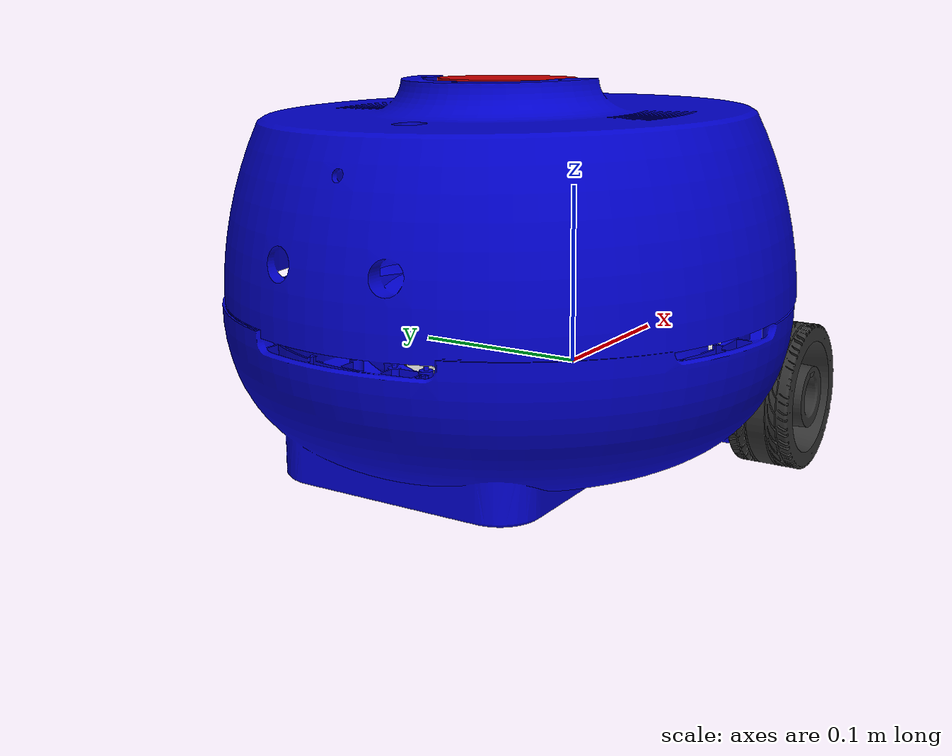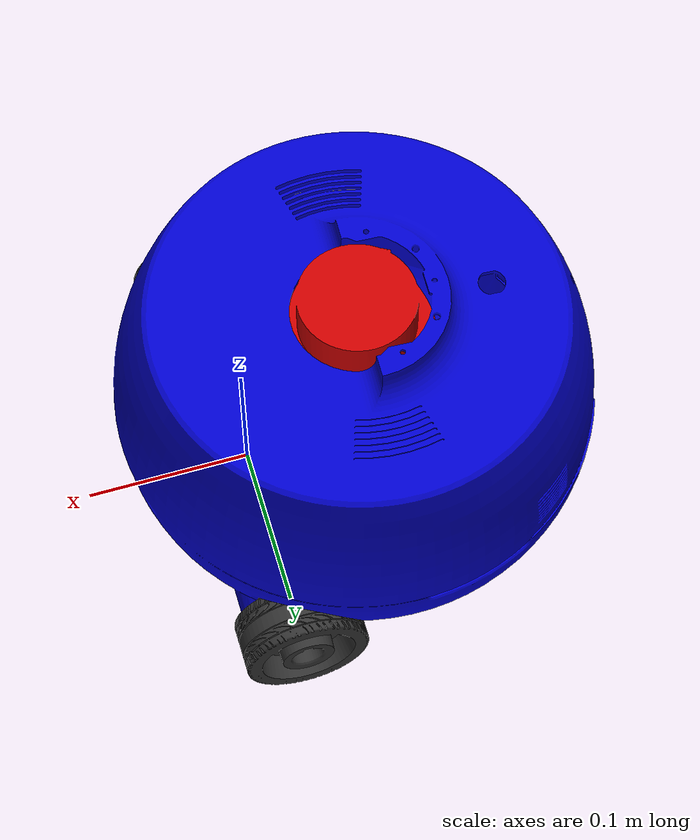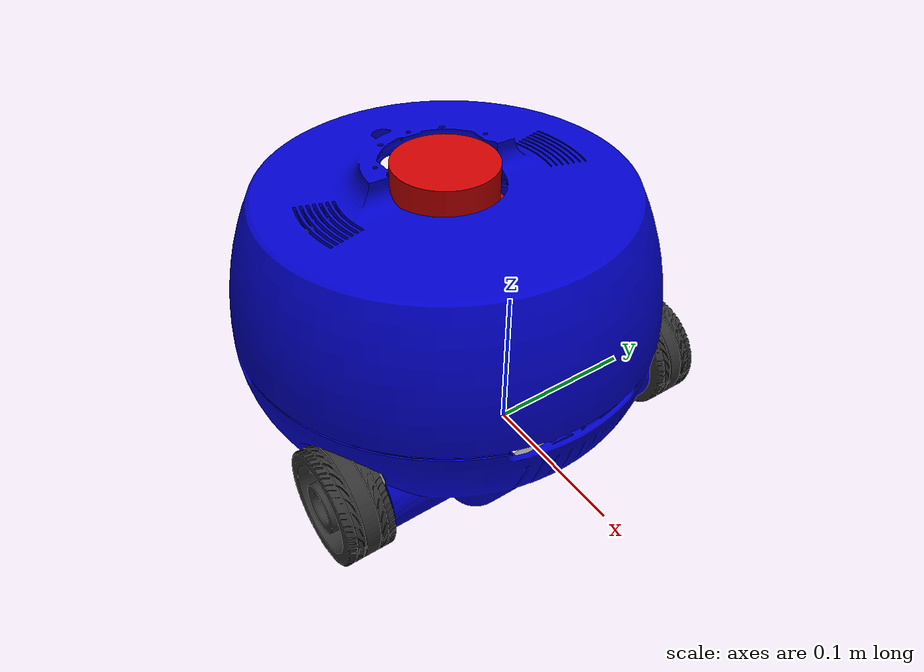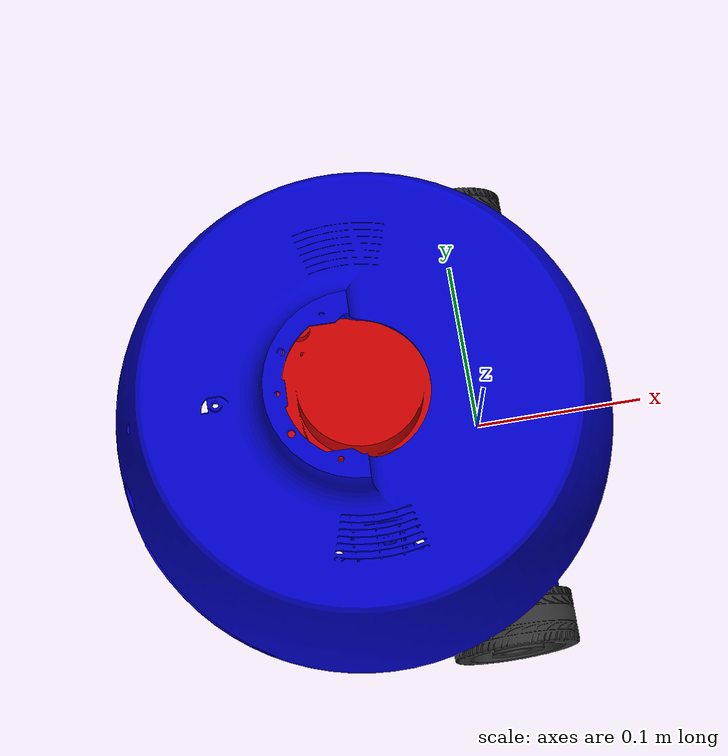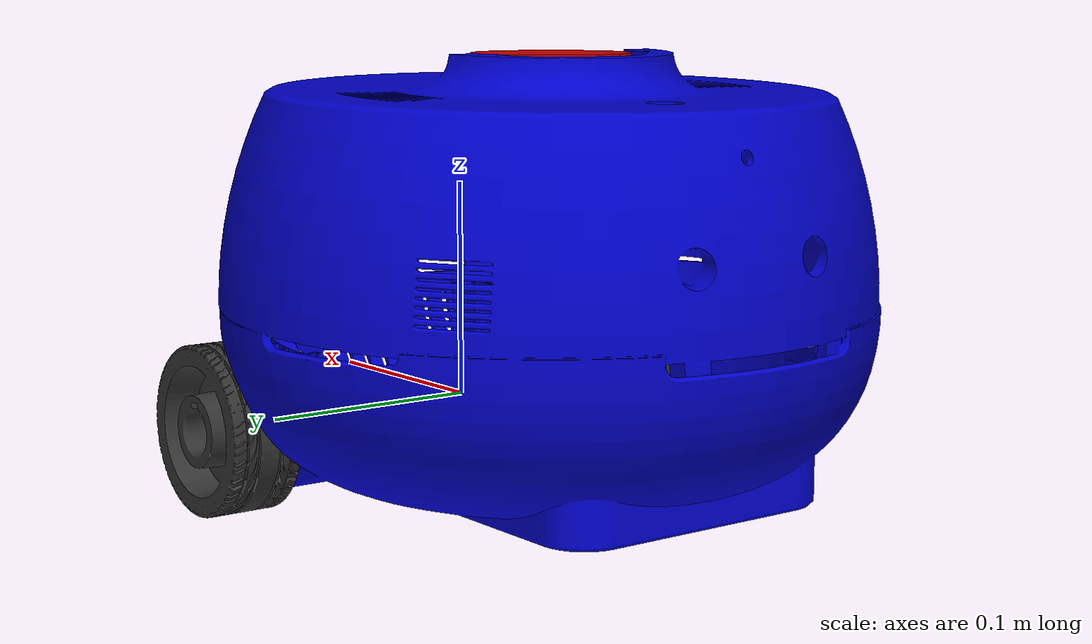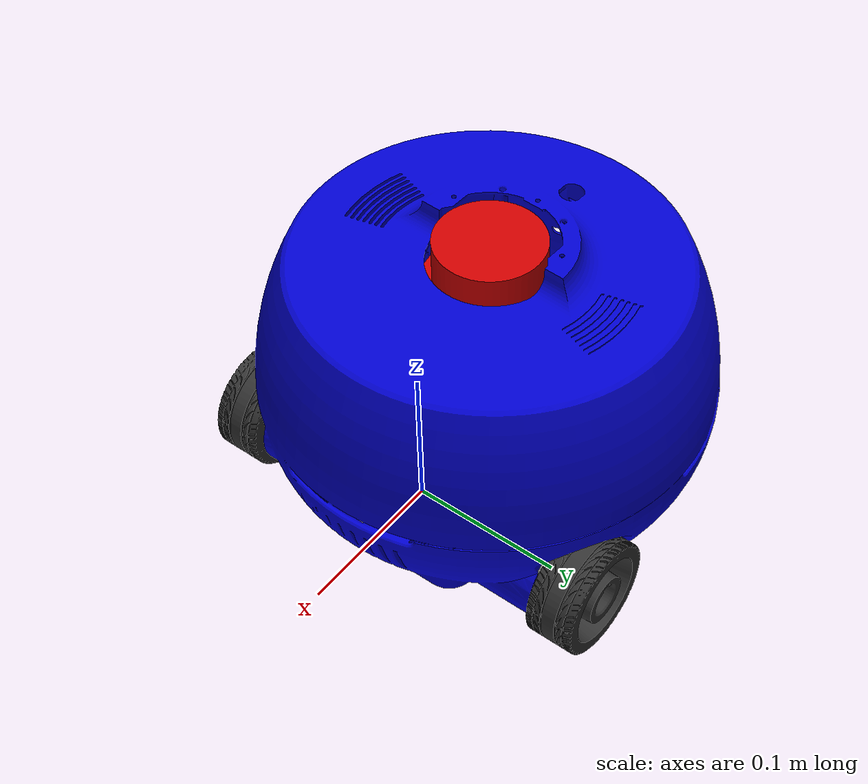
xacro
<?xml version="1.0"?>
<robot xmlns:xacro="http://www.ros.org/wiki/xacro" name="angelbot">
	<xacro:property name="robotname" value="angelbot"/>
	<!-- Import all Gazebo-customization elements, including Gazebo colors-->
 	<xacro:include filename="$(find angelbot)/modeldescription/urdf/angelbot.gazebo" />
 	<!-- Import Rviz colors -->
	<xacro:include filename="$(find angelbot)/modeldescription/urdf/angelbotmaterial4rviz.xacro"/>

	<xacro:include filename="$(find angelbot)/modeldescription/urdf/sensors/rplidar_laser.urdf.xacro" />
	<xacro:include filename="$(find angelbot)/modeldescription/urdf/sensors/mpu6050_imu.urdf.xacro" />

	<transmission name="trans_mobile_left">
		<type>transmission_interface/SimpleTransmission</type>
		<joint name="shaft2leftwheel">
			<hardwareInterface>EffortJointInterface</hardwareInterface></joint>
		<actuator name="leftwheelmotor">
			<mechanicalReduction>1</mechanicalReduction></actuator></transmission>
	<transmission name="trans_mobile_right">
		<type>transmission_interface/SimpleTransmission</type>
		<joint name="shaft2rightwheel">
			<hardwareInterface>EffortJointInterface</hardwareInterface></joint>
		<actuator name="rightwheelmotor">
			<mechanicalReduction>1</mechanicalReduction></actuator></transmission>

	<link name="${robotname}_housing">
		<collision>
			<geometry>
				<mesh filename="package://angelbot/modeldescription/mesh/angel_housing.STL"></mesh></geometry></collision>
		<visual>
			<geometry>
				<mesh filename="package://angelbot/modeldescription/mesh/angel_housing.STL"/>
			</geometry>
			<material name="blue"></material>
			<origin rpy="0 0 0" xyz="0 0 0"/>
		</visual>
		<inertial>
			<mass value="0.42642"/>
			<inertia ixx="0.0119" ixy="0.0" ixz="0.0" iyy="0.0118" iyz="0.0" izz="0.0063"/>
		</inertial>
	</link>
	<link name="${robotname}_base">
		<collision>
			<geometry>
				<mesh filename="package://angelbot/modeldescription/mesh/angel_shaftholder.STL"></mesh></geometry></collision>
		<visual>
			<geometry>
				<mesh filename="package://angelbot/modeldescription/mesh/angel_shaftholder.STL"/>
			</geometry>
			<material name="white">
			</material>
		</visual>
		<inertial>
			<mass value="0.2645"/>
			<inertia ixx="0.0014" ixy="0.0" ixz="0.0" iyy="0.0001" iyz="0.0" izz="0.0014"/>
		</inertial>
	</link>
	<link name="${robotname}_leftwheel">
		<collision>
			<geometry>
				<mesh filename="package://angelbot/modeldescription/mesh/angel_leftwheel.STL"></mesh></geometry></collision>
		<visual>
			<geometry>
				<mesh filename="package://angelbot/modeldescription/mesh/angel_leftwheel.STL"/>
			</geometry>
			<material name="grey">
			</material>
		</visual>
		<inertial>
			<mass value="0.3871"/>
			<inertia ixx="0.0238" ixy="0.0" ixz="0.0" iyy="0.0003" iyz="0.0" izz="0.0238"/>
		</inertial>
	</link>
	<link name="${robotname}_rightwheel">
		<collision>
			<geometry>
				<mesh filename="package://angelbot/modeldescription/mesh/angel_rightwheel.STL"></mesh></geometry></collision>
		<visual>
			<geometry>
				<mesh filename="package://angelbot/modeldescription/mesh/angel_rightwheel.STL"/>
			</geometry>
			<material name="grey">
			</material>
		</visual>
		<inertial>
			<mass value="0.3871"/>
			<inertia ixx="0.0238" ixy="0.0" ixz="0.0" iyy="0.0003" iyz="0.0" izz="0.0238"/>
		</inertial>
	</link>

	<joint name="base2housing" type="fixed">
		<parent link="${robotname}_base"/>
		<child link="${robotname}_housing"/>
		<origin xyz="-0.07 0 -0.0255"/>
	</joint>
	<joint name="base2leftwheel" type="continuous">
		<parent link="${robotname}_base"/>
		<child link="${robotname}_leftwheel"/>
		<origin xyz="0 0.1235 0"/>
		<axis xyz="0 -1 0"/>
	</joint>
	<joint name="base2rightwheel" type="continuous">
		<parent link="${robotname}_base"/>
		<child link="${robotname}_rightwheel"/>
		<origin xyz="0 -0.1235 0"/>
		<axis xyz="0 1 0"/>
	</joint>
	<xacro:rplidar_laser name="${robotname}" parent="${robotname}_base" ros_topic="scan" update_rate="40" min_angle="-1.3962634" max_angle="1.3962634" >
    </xacro:rplidar_laser>
    <xacro:mpu6050_imu name="${robotname}" parent="${robotname}_base">
    </xacro:mpu6050_imu>

</robot>

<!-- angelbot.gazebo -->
<robot xmlns:xacro="http://www.ros.org/wiki/xacro">
	<xacro:property name="robotname" value="angelbot"/>
	<!-- ros_control plugin -->
	<gazebo>
	  <plugin name="gazebo_ros_control" filename="libgazebo_ros_control.so">
	    <robotNamespace>/angelbot</robotNamespace>
	    <robotSimType>gazebo_ros_control/DefaultRobotHWSim</robotSimType>
	  </plugin>
	  <plugin name="differential_drive_controller" filename="libgazebo_ros_diff_drive.so">
	  	<publishWheelTF>false</publishWheelTF>
	  	<robotNamespace>/</robotNamespace>
	  	<publishTf>1</publishTf>
	  	<publishWheelJointState>false</publishWheelJointState>
	  	<alwaysOn>true</alwaysOn>
	  	<updateRate>100.0</updateRate>
	  	<leftJoint>shaft2leftwheel</leftJoint>
	  	<rightJoint>shaft2rightwheel</rightJoint>
	  	<wheelSeparation>0.247</wheelSeparation>
	  	<wheelDiameter>0.075</wheelDiameter>
	  	<broadcastTF>1</broadcastTF>
	  	<wheelTorque>30</wheelTorque>
	  	<wheelAcceleration>1.8</wheelAcceleration>
	  	<commandTopic>angelbot/cmd_vel</commandTopic>
	  	<odometryTopic>odom</odometryTopic>
    	<odometryFrame>odom</odometryFrame>
    	<robotBaseFrame>${robotname}_base</robotBaseFrame></plugin>
	</gazebo>

	<!--baselink-->
	<gazebo reference="${robotname}_base">
		<material>Gazebo/Blue</material></gazebo>
	<gazebo reference="${robotname}_shaft"><material>Gazebo/White</material></gazebo>
	<gazebo reference="${robotname}_leftwheel"><material>Gazebo/Grey</material></gazebo>
	<gazebo reference="${robotname}_rightwheel"><material>Gazebo/Grey</material></gazebo>
	<gazebo reference="${robotname}_rplidar"><material>Gazebo/Red</material>
		<sensor type="ray" name="rplidar">
			<pose>0 0 0 0 0 0</pose>
			<visualize>false</visualize>
			<update_rate>40</update_rate>
			<ray>
				<scan>
					<horizontal>
						<samples>180</samples>
						<resolution>1</resolution>
						<min_angle>-1.570796</min_angle>
						<max_angle>1.570796</max_angle></horizontal></scan>
					<range>
						<min>0.15</min>
          				<max>6.0</max>
          				<resolution>0.01</resolution></range>
					<noise></noise></ray>
		<plugin name="gazebo_ros_head_hokuyo_controller" filename="libgazebo_ros_laser.so">
        <topicName>${robotname}_rplidar_scan</topicName>
        <frameName>${robotname}_rplidar</frameName>
      </plugin></sensor></gazebo></robot>

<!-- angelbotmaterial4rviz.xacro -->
<robot><material name="black">
    <color rgba="0.0 0.0 0.0 1.0"/>
  </material>

  <material name="blue">
    <color rgba="0.0 0.0 0.8 1.0"/>
  </material>

  <material name="green">
    <color rgba="0.0 0.8 0.0 1.0"/>
  </material>

  <material name="grey">
    <color rgba="0.2 0.2 0.2 1.0"/>
  </material>

  <material name="orange">
    <color rgba="${255/255} ${108/255} ${10/255} 1.0"/>
  </material>

  <material name="brown">
    <color rgba="${222/255} ${207/255} ${195/255} 1.0"/>
  </material>

  <material name="red">
    <color rgba="0.8 0.0 0.0 1.0"/>
  </material>

  <material name="white">
    <color rgba="1.0 1.0 1.0 1.0"/>
  </material></robot>

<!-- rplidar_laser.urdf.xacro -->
<robot xmlns:xacro="http://www.ros.org/wiki/xacro">
  	<xacro:macro name="rplidar_laser" params="name parent ros_topic update_rate min_angle max_angle">
	  	<joint name="base2rplidar" type="fixed">
			<parent link="${parent}"></parent>
			<child link="${name}_rplidar"></child>
			<!--  rotate z axis 180 degree according to the placement on angelbot -->
			<origin xyz="-0.0707 0.00015 0.13399" rpy="0 0 3.1415"></origin>
		</joint>
	  	<link name="${name}_rplidar">
			<collision>
				<geometry>
					<mesh filename="package://angelbot/modeldescription/mesh/angel_rplidar.STL"></mesh></geometry></collision>
			<visual>
				<geometry>
					<mesh filename="package://angelbot/modeldescription/mesh/angel_rplidar.STL"></mesh></geometry>
				<material name="red"></material></visual>
			<inertial>
				<mass value="0.20856"></mass>
				<inertia ixx="0.0001" ixy="0.0" ixz="0.0" iyy="0.0002" iyz="0.0" izz="0.0002"></inertia></inertial>
		</link>
    </xacro:macro>
</robot>

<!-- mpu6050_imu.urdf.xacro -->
<robot xmlns:xacro="http://www.ros.org/wiki/xacro">
  	<xacro:macro name="mpu6050_imu" params="name parent">
	  	<joint name="base2mpu6050" type="fixed">
			<parent link="${parent}"></parent>
			<child link="${name}_mpu6050_link"></child>
			<origin xyz="0 0 -0.0155" rpy="0 0 0"></origin>
		</joint>
	  	<link name="${name}_mpu6050_link">
			<collision>
				<geometry>
	          		<box size="0.016 0.021 0.003"/>
		 		</geometry>
		 	</collision>
			<visual>
				<geometry>
	       			<box size="0.016 0.021 0.003"/>
	  			</geometry>
				<material name="white"></material></visual>
			<inertial>
				<mass value="0.004"></mass>
				<inertia ixx="0.0000001" ixy="0" ixz="0" iyy="0.0000001" iyz="0" izz="0.0000001"/>
				</inertial>
		</link>
    </xacro:macro>
</robot>
